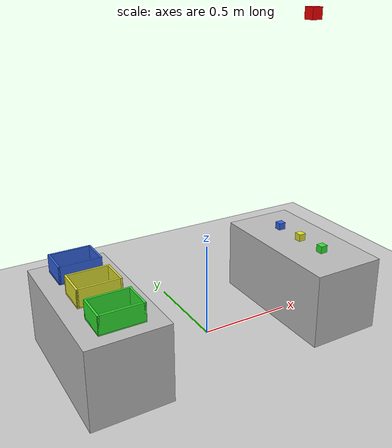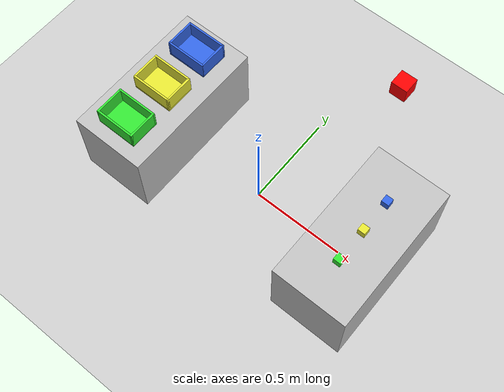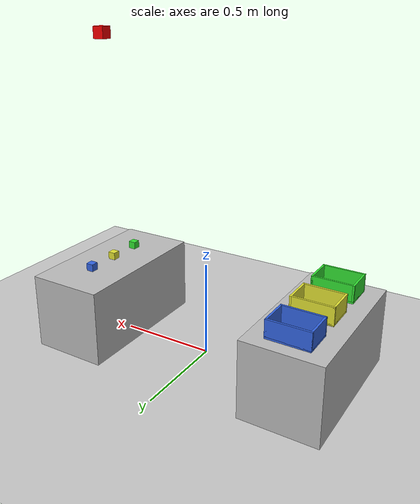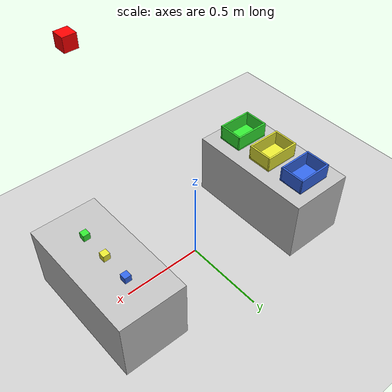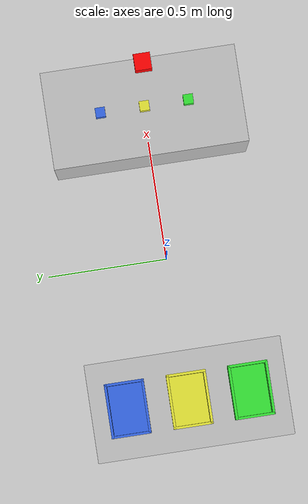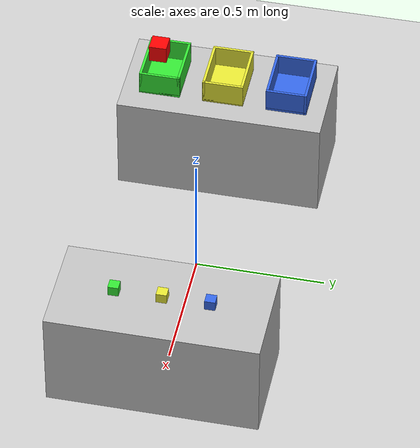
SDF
<?xml version="1.0" ?>
<sdf version="1.6">
  <world name="trash_sort_world">

    <!-- Plugin per gazebo_ros_link_attacher -->
    <plugin name="link_attacher_plugin" filename="libgazebo_ros_link_attacher.so"/>

    <!-- Basic world -->
    <include>
      <uri>model://sun</uri>
    </include>
    <include>
      <uri>model://ground_plane</uri>
    </include>

    <!-- TABLE: OBJECTS TABLE  (davanti a destra) -->
    <!-- stretto -->
    <model name="ts_table_objects">
      <static>true</static>
      <pose>0.60 0.0 0.20 0 0 1.57079632679</pose>
      <link name="link">
        <collision name="collision">
          <geometry><box><size>0.80 0.40 0.40</size></box></geometry>
        </collision>
        <visual name="visual">
          <geometry><box><size>0.80 0.40 0.40</size></box></geometry>
          <material>
            <ambient>0.75 0.75 0.75 1</ambient>
            <diffuse>0.75 0.75 0.75 1</diffuse>
          </material>
        </visual>
      </link>
    </model>

    <!-- TABLE: BINS TABLE (dietro a sinistra) -->
    <!-- MOD: stretto anche questo -->
    <model name="ts_table_bins">
      <static>true</static>
      <pose>-0.60 0.0 0.20 0 0 1.57079632679</pose>
      <link name="link">
        <collision name="collision">
          <!-- prima: 0.80 0.60 0.40 -->
          <geometry><box><size>0.80 0.40 0.40</size></box></geometry>
        </collision>
        <visual name="visual">
          <!-- prima: 0.80 0.60 0.40 -->
          <geometry><box><size>0.80 0.40 0.40</size></box></geometry>
          <material>
            <ambient>0.75 0.75 0.75 1</ambient>
            <diffuse>0.75 0.75 0.75 1</diffuse>
          </material>
        </visual>
      </link>
    </model>

    <!-- 3 CUBES (DYNAMIC) su tavolo objects -->
    <!-- Spawn iniziale (poi lo script li randomizza) -->

    <!-- Green cube -->
    <model name="cube_green">
      <static>false</static>
      <pose>0.60 -0.18 0.42 0 0 0</pose>
      <link name="link">
        <inertial>
          <mass>0.05</mass>
          <inertia>
            <ixx>0.00001</ixx><iyy>0.00001</iyy><izz>0.00001</izz>
            <ixy>0</ixy><ixz>0</ixz><iyz>0</iyz>
          </inertia>
        </inertial>
        <collision name="collision">
          <geometry><box><size>0.04 0.04 0.04</size></box></geometry>
        </collision>
        <visual name="visual">
          <geometry><box><size>0.04 0.04 0.04</size></box></geometry>
          <material>
            <ambient>0.2 0.9 0.2 1</ambient>
            <diffuse>0.2 0.9 0.2 1</diffuse>
          </material>
        </visual>
      </link>
    </model>

    <!-- Yellow cube con attrito alto -->
    <model name="cube_yellow">
      <static>false</static>
      <pose>0.60 0.0 0.42 0 0 0</pose>
      <link name="link">
        <inertial>
          <mass>0.05</mass>
          <inertia>
            <ixx>0.00001</ixx><iyy>0.00001</iyy><izz>0.00001</izz>
            <ixy>0</ixy><ixz>0</ixz><iyz>0</iyz>
          </inertia>
        </inertial>
        <collision name="collision">
          <geometry><box><size>0.04 0.04 0.04</size></box></geometry>
          <surface>
            <friction>
              <ode>
                <mu>2.0</mu>
                <mu2>2.0</mu2>
              </ode>
            </friction>
            <contact>
              <ode>
                <kp>1000000.0</kp>
                <kd>100.0</kd>
                <min_depth>0.001</min_depth>
              </ode>
            </contact>
          </surface>
        </collision>
        <visual name="visual">
          <geometry><box><size>0.04 0.04 0.04</size></box></geometry>
          <material>
            <ambient>0.9 0.9 0.2 1</ambient>
            <diffuse>0.9 0.9 0.2 1</diffuse>
          </material>
        </visual>
      </link>
    </model>

    <!-- Blue cube -->
    <model name="cube_blue">
      <static>false</static>
      <pose>0.60 0.18 0.42 0 0 0</pose>
      <link name="link">
        <inertial>
          <mass>0.05</mass>
          <inertia>
            <ixx>0.00001</ixx><iyy>0.00001</iyy><izz>0.00001</izz>
            <ixy>0</ixy><ixz>0</ixz><iyz>0</iyz>
          </inertia>
        </inertial>
        <collision name="collision">
          <geometry><box><size>0.04 0.04 0.04</size></box></geometry>
        </collision>
        <visual name="visual">
          <geometry><box><size>0.04 0.04 0.04</size></box></geometry>
          <material>
            <ambient>0.2 0.4 0.9 1</ambient>
            <diffuse>0.2 0.4 0.9 1</diffuse>
          </material>
        </visual>
      </link>
    </model>

    <!-- 3 OPEN BINS (STATIC) su tavolo bins -->
    <!-- pareti abbassate -->

    <!-- BIN GREEN -->
    <model name="bin_green">
      <static>true</static>
      <pose>-0.60 -0.25 0.49 0 0 1.57079632679</pose>
      <link name="link">
        <collision name="col_bottom">
          <pose>0 0 -0.085 0 0 0</pose>
          <geometry><box><size>0.16 0.22 0.01</size></box></geometry>
        </collision>
        <visual name="vis_bottom">
          <pose>0 0 -0.085 0 0 0</pose>
          <geometry><box><size>0.16 0.22 0.01</size></box></geometry>
          <material><ambient>0.2 0.9 0.2 1</ambient><diffuse>0.2 0.9 0.2 1</diffuse></material>
        </visual>

        <collision name="col_wpx">
          <pose>0.075 0 -0.04 0 0 0</pose>
          <geometry><box><size>0.01 0.22 0.09</size></box></geometry>
        </collision>
        <visual name="vis_wpx">
          <pose>0.075 0 -0.04 0 0 0</pose>
          <geometry><box><size>0.01 0.22 0.09</size></box></geometry>
          <material><ambient>0.2 0.9 0.2 1</ambient><diffuse>0.2 0.9 0.2 1</diffuse></material>
        </visual>

        <collision name="col_wmx">
          <pose>-0.075 0 -0.04 0 0 0</pose>
          <geometry><box><size>0.01 0.22 0.09</size></box></geometry>
        </collision>
        <visual name="vis_wmx">
          <pose>-0.075 0 -0.04 0 0 0</pose>
          <geometry><box><size>0.01 0.22 0.09</size></box></geometry>
          <material><ambient>0.2 0.9 0.2 1</ambient><diffuse>0.2 0.9 0.2 1</diffuse></material>
        </visual>

        <collision name="col_wpy">
          <pose>0 0.105 -0.04 0 0 0</pose>
          <geometry><box><size>0.16 0.01 0.09</size></box></geometry>
        </collision>
        <visual name="vis_wpy">
          <pose>0 0.105 -0.04 0 0 0</pose>
          <geometry><box><size>0.16 0.01 0.09</size></box></geometry>
          <material><ambient>0.2 0.9 0.2 1</ambient><diffuse>0.2 0.9 0.2 1</diffuse></material>
        </visual>

        <collision name="col_wmy">
          <pose>0 -0.105 -0.04 0 0 0</pose>
          <geometry><box><size>0.16 0.01 0.09</size></box></geometry>
        </collision>
        <visual name="vis_wmy">
          <pose>0 -0.105 -0.04 0 0 0</pose>
          <geometry><box><size>0.16 0.01 0.09</size></box></geometry>
          <material><ambient>0.2 0.9 0.2 1</ambient><diffuse>0.2 0.9 0.2 1</diffuse></material>
        </visual>
      </link>
    </model>

    <!-- BIN YELLOW -->
    <model name="bin_yellow">
      <static>true</static>
      <pose>-0.60 0.0 0.49 0 0 1.57079632679</pose>
      <link name="link">
        <collision name="col_bottom">
          <pose>0 0 -0.085 0 0 0</pose>
          <geometry><box><size>0.16 0.22 0.01</size></box></geometry>
        </collision>
        <visual name="vis_bottom">
          <pose>0 0 -0.085 0 0 0</pose>
          <geometry><box><size>0.16 0.22 0.01</size></box></geometry>
          <material><ambient>0.9 0.9 0.2 1</ambient><diffuse>0.9 0.9 0.2 1</diffuse></material>
        </visual>

        <collision name="col_wpx">
          <pose>0.075 0 -0.04 0 0 0</pose>
          <geometry><box><size>0.01 0.22 0.09</size></box></geometry>
        </collision>
        <visual name="vis_wpx">
          <pose>0.075 0 -0.04 0 0 0</pose>
          <geometry><box><size>0.01 0.22 0.09</size></box></geometry>
          <material><ambient>0.9 0.9 0.2 1</ambient><diffuse>0.9 0.9 0.2 1</diffuse></material>
        </visual>

        <collision name="col_wmx">
          <pose>-0.075 0 -0.04 0 0 0</pose>
          <geometry><box><size>0.01 0.22 0.09</size></box></geometry>
        </collision>
        <visual name="vis_wmx">
          <pose>-0.075 0 -0.04 0 0 0</pose>
          <geometry><box><size>0.01 0.22 0.09</size></box></geometry>
          <material><ambient>0.9 0.9 0.2 1</ambient><diffuse>0.9 0.9 0.2 1</diffuse></material>
        </visual>

        <collision name="col_wpy">
          <pose>0 0.105 -0.04 0 0 0</pose>
          <geometry><box><size>0.16 0.01 0.09</size></box></geometry>
        </collision>
        <visual name="vis_wpy">
          <pose>0 0.105 -0.04 0 0 0</pose>
          <geometry><box><size>0.16 0.01 0.09</size></box></geometry>
          <material><ambient>0.9 0.9 0.2 1</ambient><diffuse>0.9 0.9 0.2 1</diffuse></material>
        </visual>

        <collision name="col_wmy">
          <pose>0 -0.105 -0.04 0 0 0</pose>
          <geometry><box><size>0.16 0.01 0.09</size></box></geometry>
        </collision>
        <visual name="vis_wmy">
          <pose>0 -0.105 -0.04 0 0 0</pose>
          <geometry><box><size>0.16 0.01 0.09</size></box></geometry>
          <material><ambient>0.9 0.9 0.2 1</ambient><diffuse>0.9 0.9 0.2 1</diffuse></material>
        </visual>
      </link>
    </model>

    <!-- BIN BLUE -->
    <model name="bin_blue">
      <static>true</static>
      <pose>-0.60 0.25 0.49 0 0 1.57079632679</pose>
      <link name="link">
        <collision name="col_bottom">
          <pose>0 0 -0.085 0 0 0</pose>
          <geometry><box><size>0.16 0.22 0.01</size></box></geometry>
        </collision>
        <visual name="vis_bottom">
          <pose>0 0 -0.085 0 0 0</pose>
          <geometry><box><size>0.16 0.22 0.01</size></box></geometry>
          <material><ambient>0.2 0.4 0.9 1</ambient><diffuse>0.2 0.4 0.9 1</diffuse></material>
        </visual>

        <collision name="col_wpx">
          <pose>0.075 0 -0.04 0 0 0</pose>
          <geometry><box><size>0.01 0.22 0.09</size></box></geometry>
        </collision>
        <visual name="vis_wpx">
          <pose>0.075 0 -0.04 0 0 0</pose>
          <geometry><box><size>0.01 0.22 0.09</size></box></geometry>
          <material><ambient>0.2 0.4 0.9 1</ambient><diffuse>0.2 0.4 0.9 1</diffuse></material>
        </visual>

        <collision name="col_wmx">
          <pose>-0.075 0 -0.04 0 0 0</pose>
          <geometry><box><size>0.01 0.22 0.09</size></box></geometry>
        </collision>
        <visual name="vis_wmx">
          <pose>-0.075 0 -0.04 0 0 0</pose>
          <geometry><box><size>0.01 0.22 0.09</size></box></geometry>
          <material><ambient>0.2 0.4 0.9 1</ambient><diffuse>0.2 0.4 0.9 1</diffuse></material>
        </visual>

        <collision name="col_wpy">
          <pose>0 0.105 -0.04 0 0 0</pose>
          <geometry><box><size>0.16 0.01 0.09</size></box></geometry>
        </collision>
        <visual name="vis_wpy">
          <pose>0 0.105 -0.04 0 0 0</pose>
          <geometry><box><size>0.16 0.01 0.09</size></box></geometry>
          <material><ambient>0.2 0.4 0.9 1</ambient><diffuse>0.2 0.4 0.9 1</diffuse></material>
        </visual>

        <collision name="col_wmy">
          <pose>0 -0.105 -0.04 0 0 0</pose>
          <geometry><box><size>0.16 0.01 0.09</size></box></geometry>
        </collision>
        <visual name="vis_wmy">
          <pose>0 -0.105 -0.04 0 0 0</pose>
          <geometry><box><size>0.16 0.01 0.09</size></box></geometry>
          <material><ambient>0.2 0.4 0.9 1</ambient><diffuse>0.2 0.4 0.9 1</diffuse></material>
        </visual>
      </link>
    </model>

    <!-- OVERHEAD CAMERA (ROS) -->
    <model name="overhead_camera">
      <static>true</static>

      <!-- Sopra il tavolo oggetti: x=0.60 y=0 z=1.60, guarda in basso -->
      <pose>0.60 0.0 1.60 0 1.57079632679 3.14159265359</pose>

      <link name="link">

        <!-- Così LA VEDI in Gazebo (cubetto rosso) -->
        <visual name="overhead_cam_body">
          <geometry>
            <box><size>0.06 0.06 0.06</size></box>
          </geometry>
          <material>
            <ambient>1 0 0 1</ambient>
            <diffuse>1 0 0 1</diffuse>
          </material>
        </visual>

        <sensor name="overhead_sensor" type="camera">
          <always_on>true</always_on>
          <update_rate>30</update_rate>

          <!-- Disegna anche il frustum del sensore -->
          <visualize>true</visualize>

          <camera>
            <horizontal_fov>1.047</horizontal_fov>
            <image>
              <width>640</width>
              <height>480</height>
              <format>R8G8B8</format>
            </image>
            <clip>
              <near>0.05</near>
              <far>10</far>
            </clip>
          </camera>

          <plugin name="gazebo_ros_camera" filename="libgazebo_ros_camera.so">
            <robotNamespace>/</robotNamespace>
            <cameraName>overhead_camera</cameraName>
            <imageTopicName>image_raw</imageTopicName>
            <cameraInfoTopicName>camera_info</cameraInfoTopicName>
            <frameName>overhead_camera_link</frameName>

            <hackBaseline>0.07</hackBaseline>
            <distortionK1>0.0</distortionK1>
            <distortionK2>0.0</distortionK2>
            <distortionK3>0.0</distortionK3>
            <distortionT1>0.0</distortionT1>
            <distortionT2>0.0</distortionT2>
          </plugin>
        </sensor>

      </link>
    </model>

  </world>
</sdf>
